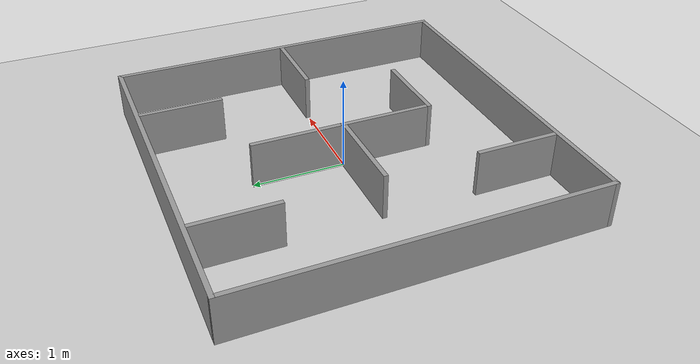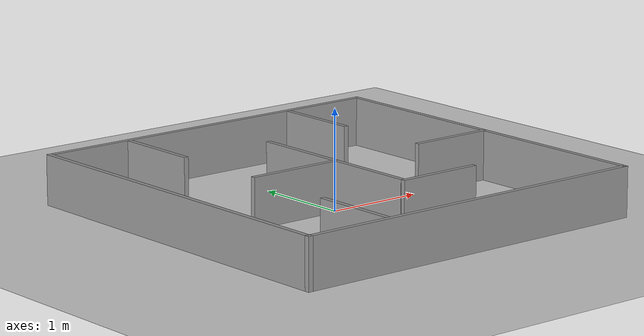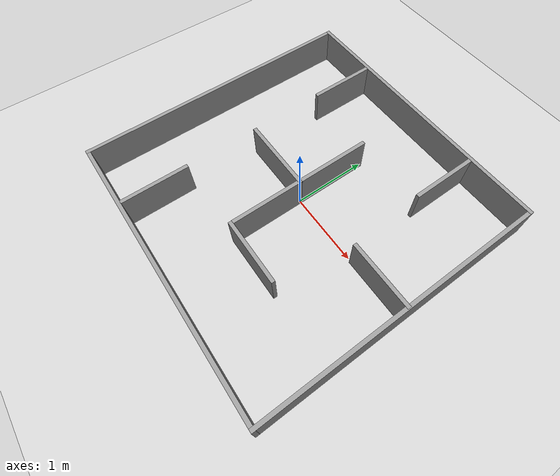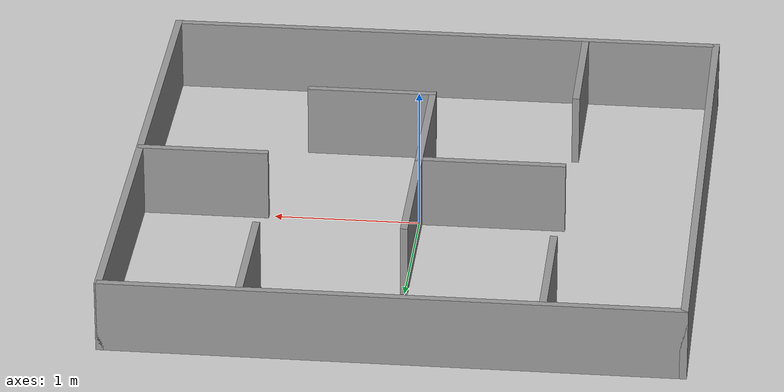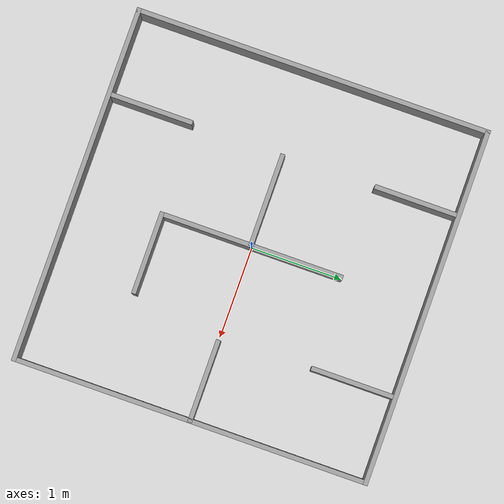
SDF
<sdf version="1.6">
 <world name="default">
  <light name="sun" type="directional">
   <pose>0 0 10 0 -0 0</pose>
   <diffuse>0.8 0.8 0.8 1</diffuse>
   <specular>0.1 0.1 0.1 1</specular>
   <attenuation>
    <range>1000</range>
    <constant>0.9</constant>
    <linear>0.01</linear>
    <quadratic>0.001</quadratic>
   </attenuation>
   <direction>-0.5 0.5 -1</direction>
  </light>
  <model name="ground_plane">
   <static>1</static>
   <link name="link">
    <collision name="collision">
     <geometry><plane><normal>0 0 1</normal><size>100 100</size></plane></geometry>
     <surface><friction><ode><mu>100</mu><mu2>50</mu2></ode></friction></surface>
    </collision>
    <visual name="visual">
     <cast_shadows>0</cast_shadows>
     <geometry><plane><normal>0 0 1</normal><size>100 100</size></plane></geometry>
     <material>
      <script><uri>file://media/materials/scripts/gazebo.material</uri><name>Gazebo/Grey</name></script>
     </material>
    </visual>
   </link>
  </model>
  <gravity>0 0 -9.8</gravity>
  <magnetic_field>6e-06 2.3e-05 -4.2e-05</magnetic_field>
  <atmosphere type="adiabatic"/>
  <physics name="default_physics" default="0" type="ode">
   <max_step_size>0.001</max_step_size>
   <real_time_factor>1</real_time_factor>
   <real_time_update_rate>1000</real_time_update_rate>
  </physics>
  <scene><ambient>0.4 0.4 0.4 1</ambient><background>0.7 0.7 0.7 1</background><shadows>1</shadows></scene>
  <spherical_coordinates>
   <surface_model>EARTH_WGS84</surface_model>
   <latitude_deg>0</latitude_deg>
   <longitude_deg>0</longitude_deg>
   <elevation>0</elevation>
   <heading_deg>0</heading_deg>
  </spherical_coordinates>
  <model name="maze-one_0">
   <link name="Wall_11">
    <pose>0 1.925 0 0 -0 0</pose>
    <visual name="Wall_11_Visual">
     <pose>0 0 0.25 0 -0 0</pose>
     <geometry><box><size>3.9 0.05 0.5</size></box></geometry>
     <material>
      <script><uri>file://media/materials/scripts/gazebo.material</uri><name>Gazebo/Grey</name></script>
      <ambient>1 1 1 1</ambient>
      <diffuse>0.7 0.7 0.7 1</diffuse>
      <specular>0.01 0.01 0.01 1</specular>
      <emissive>0 0 0 1</emissive>
     </material>
    </visual>
    <collision name="Wall_11_Collision">
     <pose>0 0 0.25 0 -0 0</pose>
     <geometry><box><size>3.9 0.05 0.5</size></box></geometry>
     <surface>
      <friction>
       <ode><mu>1</mu><mu2>1</mu2><fdir1>0 0 0</fdir1><slip1>0</slip1><slip2>0</slip2></ode>
       <torsional>
        <coefficient>1</coefficient>
        <patch_radius>0</patch_radius>
        <surface_radius>0</surface_radius>
        <use_patch_radius>1</use_patch_radius>
        <ode><slip>0</slip></ode>
       </torsional>
      </friction>
      <bounce><restitution_coefficient>0</restitution_coefficient><threshold>1e+06</threshold></bounce>
      <contact>
       <collide_without_contact>0</collide_without_contact>
       <collide_without_contact_bitmask>1</collide_without_contact_bitmask>
       <collide_bitmask>1</collide_bitmask>
       <ode>
        <soft_cfm>0</soft_cfm>
        <soft_erp>0.2</soft_erp>
        <kp>1e+13</kp>
        <kd>1</kd>
        <max_vel>0.01</max_vel>
        <min_depth>0</min_depth>
       </ode>
       <bullet>
        <split_impulse>1</split_impulse>
        <split_impulse_penetration_threshold>-0.01</split_impulse_penetration_threshold>
        <soft_cfm>0</soft_cfm>
        <soft_erp>0.2</soft_erp>
        <kp>1e+13</kp>
        <kd>1</kd>
       </bullet>
      </contact>
     </surface>
    </collision>
   </link>
   <link name="Wall_12">
    <pose>1.925 0 0 0 0 -1.5708</pose>
    <visual name="Wall_12_Visual">
     <pose>0 0 0.25 0 -0 0</pose>
     <geometry><box><size>3.9 0.05 0.5</size></box></geometry>
     <material>
      <script><uri>file://media/materials/scripts/gazebo.material</uri><name>Gazebo/Grey</name></script>
      <ambient>1 1 1 1</ambient>
      <diffuse>0.7 0.7 0.7 1</diffuse>
      <specular>0.01 0.01 0.01 1</specular>
      <emissive>0 0 0 1</emissive>
     </material>
    </visual>
    <collision name="Wall_12_Collision">
     <pose>0 0 0.25 0 -0 0</pose>
     <geometry><box><size>3.9 0.05 0.5</size></box></geometry>
     <surface>
      <friction>
       <ode><mu>1</mu><mu2>1</mu2><fdir1>0 0 0</fdir1><slip1>0</slip1><slip2>0</slip2></ode>
       <torsional>
        <coefficient>1</coefficient>
        <patch_radius>0</patch_radius>
        <surface_radius>0</surface_radius>
        <use_patch_radius>1</use_patch_radius>
        <ode><slip>0</slip></ode>
       </torsional>
      </friction>
      <bounce><restitution_coefficient>0</restitution_coefficient><threshold>1e+06</threshold></bounce>
      <contact>
       <collide_without_contact>0</collide_without_contact>
       <collide_without_contact_bitmask>1</collide_without_contact_bitmask>
       <collide_bitmask>1</collide_bitmask>
       <ode>
        <soft_cfm>0</soft_cfm>
        <soft_erp>0.2</soft_erp>
        <kp>1e+13</kp>
        <kd>1</kd>
        <max_vel>0.01</max_vel>
        <min_depth>0</min_depth>
       </ode>
       <bullet>
        <split_impulse>1</split_impulse>
        <split_impulse_penetration_threshold>-0.01</split_impulse_penetration_threshold>
        <soft_cfm>0</soft_cfm>
        <soft_erp>0.2</soft_erp>
        <kp>1e+13</kp>
        <kd>1</kd>
       </bullet>
      </contact>
     </surface>
    </collision>
   </link>
   <link name="Wall_13">
    <pose>0 -1.925 0 0 -0 3.14159</pose>
    <visual name="Wall_13_Visual">
     <pose>0 0 0.25 0 -0 0</pose>
     <geometry><box><size>3.9 0.05 0.5</size></box></geometry>
     <material>
      <script><uri>file://media/materials/scripts/gazebo.material</uri><name>Gazebo/Grey</name></script>
      <ambient>1 1 1 1</ambient>
      <diffuse>0.7 0.7 0.7 1</diffuse>
      <specular>0.01 0.01 0.01 1</specular>
      <emissive>0 0 0 1</emissive>
     </material>
    </visual>
    <collision name="Wall_13_Collision">
     <pose>0 0 0.25 0 -0 0</pose>
     <geometry><box><size>3.9 0.05 0.5</size></box></geometry>
     <surface>
      <friction>
       <ode><mu>1</mu><mu2>1</mu2><fdir1>0 0 0</fdir1><slip1>0</slip1><slip2>0</slip2></ode>
       <torsional>
        <coefficient>1</coefficient>
        <patch_radius>0</patch_radius>
        <surface_radius>0</surface_radius>
        <use_patch_radius>1</use_patch_radius>
        <ode><slip>0</slip></ode>
       </torsional>
      </friction>
      <bounce><restitution_coefficient>0</restitution_coefficient><threshold>1e+06</threshold></bounce>
      <contact>
       <collide_without_contact>0</collide_without_contact>
       <collide_without_contact_bitmask>1</collide_without_contact_bitmask>
       <collide_bitmask>1</collide_bitmask>
       <ode>
        <soft_cfm>0</soft_cfm>
        <soft_erp>0.2</soft_erp>
        <kp>1e+13</kp>
        <kd>1</kd>
        <max_vel>0.01</max_vel>
        <min_depth>0</min_depth>
       </ode>
       <bullet>
        <split_impulse>1</split_impulse>
        <split_impulse_penetration_threshold>-0.01</split_impulse_penetration_threshold>
        <soft_cfm>0</soft_cfm>
        <soft_erp>0.2</soft_erp>
        <kp>1e+13</kp>
        <kd>1</kd>
       </bullet>
      </contact>
     </surface>
    </collision>
   </link>
   <link name="Wall_14">
    <pose>-1.925 0 0 0 -0 1.5708</pose>
    <visual name="Wall_14_Visual">
     <pose>0 0 0.25 0 -0 0</pose>
     <geometry><box><size>3.9 0.05 0.5</size></box></geometry>
     <material>
      <script><uri>file://media/materials/scripts/gazebo.material</uri><name>Gazebo/Grey</name></script>
      <ambient>1 1 1 1</ambient>
      <diffuse>0.7 0.7 0.7 1</diffuse>
      <specular>0.01 0.01 0.01 1</specular>
      <emissive>0 0 0 1</emissive>
     </material>
    </visual>
    <collision name="Wall_14_Collision">
     <pose>0 0 0.25 0 -0 0</pose>
     <geometry><box><size>3.9 0.05 0.5</size></box></geometry>
     <surface>
      <friction>
       <ode><mu>1</mu><mu2>1</mu2><fdir1>0 0 0</fdir1><slip1>0</slip1><slip2>0</slip2></ode>
       <torsional>
        <coefficient>1</coefficient>
        <patch_radius>0</patch_radius>
        <surface_radius>0</surface_radius>
        <use_patch_radius>1</use_patch_radius>
        <ode><slip>0</slip></ode>
       </torsional>
      </friction>
      <bounce><restitution_coefficient>0</restitution_coefficient><threshold>1e+06</threshold></bounce>
      <contact>
       <collide_without_contact>0</collide_without_contact>
       <collide_without_contact_bitmask>1</collide_without_contact_bitmask>
       <collide_bitmask>1</collide_bitmask>
       <ode>
        <soft_cfm>0</soft_cfm>
        <soft_erp>0.2</soft_erp>
        <kp>1e+13</kp>
        <kd>1</kd>
        <max_vel>0.01</max_vel>
        <min_depth>0</min_depth>
       </ode>
       <bullet>
        <split_impulse>1</split_impulse>
        <split_impulse_penetration_threshold>-0.01</split_impulse_penetration_threshold>
        <soft_cfm>0</soft_cfm>
        <soft_erp>0.2</soft_erp>
        <kp>1e+13</kp>
        <kd>1</kd>
       </bullet>
      </contact>
     </surface>
    </collision>
   </link>
   <link name="Wall_27">
    <pose>0.996 1.4547 0 0 0 -1.5708</pose>
    <visual name="Wall_27_Visual">
     <pose>0 0 0.25 0 -0 0</pose>
     <geometry><box><size>0.900337 0.05 0.5</size></box></geometry>
     <material>
      <script><uri>file://media/materials/scripts/gazebo.material</uri><name>Gazebo/Grey</name></script>
      <ambient>1 1 1 1</ambient>
      <diffuse>0.7 0.7 0.7 1</diffuse>
      <specular>0.01 0.01 0.01 1</specular>
      <emissive>0 0 0 1</emissive>
     </material>
    </visual>
    <collision name="Wall_27_Collision">
     <pose>0 0 0.25 0 -0 0</pose>
     <geometry><box><size>0.900337 0.05 0.5</size></box></geometry>
     <surface>
      <friction>
       <ode><mu>1</mu><mu2>1</mu2><fdir1>0 0 0</fdir1><slip1>0</slip1><slip2>0</slip2></ode>
       <torsional>
        <coefficient>1</coefficient>
        <patch_radius>0</patch_radius>
        <surface_radius>0</surface_radius>
        <use_patch_radius>1</use_patch_radius>
        <ode><slip>0</slip></ode>
       </torsional>
      </friction>
      <bounce><restitution_coefficient>0</restitution_coefficient><threshold>1e+06</threshold></bounce>
      <contact>
       <collide_without_contact>0</collide_without_contact>
       <collide_without_contact_bitmask>1</collide_without_contact_bitmask>
       <collide_bitmask>1</collide_bitmask>
       <ode>
        <soft_cfm>0</soft_cfm>
        <soft_erp>0.2</soft_erp>
        <kp>1e+13</kp>
        <kd>1</kd>
        <max_vel>0.01</max_vel>
        <min_depth>0</min_depth>
       </ode>
       <bullet>
        <split_impulse>1</split_impulse>
        <split_impulse_penetration_threshold>-0.01</split_impulse_penetration_threshold>
        <soft_cfm>0</soft_cfm>
        <soft_erp>0.2</soft_erp>
        <kp>1e+13</kp>
        <kd>1</kd>
       </bullet>
      </contact>
     </surface>
    </collision>
   </link>
   <link name="Wall_30">
    <pose>-1.0002 1.4523 0 0 0 -1.5708</pose>
    <visual name="Wall_30_Visual">
     <pose>0 0 0.25 0 -0 0</pose>
     <geometry><box><size>0.900217 0.05 0.5</size></box></geometry>
     <material>
      <script><uri>file://media/materials/scripts/gazebo.material</uri><name>Gazebo/Grey</name></script>
      <ambient>1 1 1 1</ambient>
      <diffuse>0.7 0.7 0.7 1</diffuse>
      <specular>0.01 0.01 0.01 1</specular>
      <emissive>0 0 0 1</emissive>
     </material>
    </visual>
    <collision name="Wall_30_Collision">
     <pose>0 0 0.25 0 -0 0</pose>
     <geometry><box><size>0.900217 0.05 0.5</size></box></geometry>
     <surface>
      <friction>
       <ode><mu>1</mu><mu2>1</mu2><fdir1>0 0 0</fdir1><slip1>0</slip1><slip2>0</slip2></ode>
       <torsional>
        <coefficient>1</coefficient>
        <patch_radius>0</patch_radius>
        <surface_radius>0</surface_radius>
        <use_patch_radius>1</use_patch_radius>
        <ode><slip>0</slip></ode>
       </torsional>
      </friction>
      <bounce><restitution_coefficient>0</restitution_coefficient><threshold>1e+06</threshold></bounce>
      <contact>
       <collide_without_contact>0</collide_without_contact>
       <collide_without_contact_bitmask>1</collide_without_contact_bitmask>
       <collide_bitmask>1</collide_bitmask>
       <ode>
        <soft_cfm>0</soft_cfm>
        <soft_erp>0.2</soft_erp>
        <kp>1e+13</kp>
        <kd>1</kd>
        <max_vel>0.01</max_vel>
        <min_depth>0</min_depth>
       </ode>
       <bullet>
        <split_impulse>1</split_impulse>
        <split_impulse_penetration_threshold>-0.01</split_impulse_penetration_threshold>
        <soft_cfm>0</soft_cfm>
        <soft_erp>0.2</soft_erp>
        <kp>1e+13</kp>
        <kd>1</kd>
       </bullet>
      </contact>
     </surface>
    </collision>
   </link>
   <link name="Wall_36">
    <pose>1.48944 0.002482 0 0 -0 3.14159</pose>
    <visual name="Wall_36_Visual">
     <pose>0 0 0.25 0 -0 0</pose>
     <geometry><box><size>0.9 0.05 0.5</size></box></geometry>
     <material>
      <script><uri>file://media/materials/scripts/gazebo.material</uri><name>Gazebo/Grey</name></script>
      <ambient>1 1 1 1</ambient>
      <diffuse>0.7 0.7 0.7 1</diffuse>
      <specular>0.01 0.01 0.01 1</specular>
      <emissive>0 0 0 1</emissive>
     </material>
    </visual>
    <collision name="Wall_36_Collision">
     <pose>0 0 0.25 0 -0 0</pose>
     <geometry><box><size>0.9 0.05 0.5</size></box></geometry>
     <surface>
      <friction>
       <ode><mu>1</mu><mu2>1</mu2><fdir1>0 0 0</fdir1><slip1>0</slip1><slip2>0</slip2></ode>
       <torsional>
        <coefficient>1</coefficient>
        <patch_radius>0</patch_radius>
        <surface_radius>0</surface_radius>
        <use_patch_radius>1</use_patch_radius>
        <ode><slip>0</slip></ode>
       </torsional>
      </friction>
      <bounce><restitution_coefficient>0</restitution_coefficient><threshold>1e+06</threshold></bounce>
      <contact>
       <collide_without_contact>0</collide_without_contact>
       <collide_without_contact_bitmask>1</collide_without_contact_bitmask>
       <collide_bitmask>1</collide_bitmask>
       <ode>
        <soft_cfm>0</soft_cfm>
        <soft_erp>0.2</soft_erp>
        <kp>1e+13</kp>
        <kd>1</kd>
        <max_vel>0.01</max_vel>
        <min_depth>0</min_depth>
       </ode>
       <bullet>
        <split_impulse>1</split_impulse>
        <split_impulse_penetration_threshold>-0.01</split_impulse_penetration_threshold>
        <soft_cfm>0</soft_cfm>
        <soft_erp>0.2</soft_erp>
        <kp>1e+13</kp>
        <kd>1</kd>
       </bullet>
      </contact>
     </surface>
    </collision>
   </link>
   <link name="Wall_40">
    <pose>-0.997417 -1.45292 0 0 0 -1.5708</pose>
    <visual name="Wall_40_Visual">
     <pose>0 0 0.25 0 -0 0</pose>
     <geometry><box><size>0.899931 0.05 0.5</size></box></geometry>
     <material>
      <script><uri>file://media/materials/scripts/gazebo.material</uri><name>Gazebo/Grey</name></script>
      <ambient>1 1 1 1</ambient>
      <diffuse>0.7 0.7 0.7 1</diffuse>
      <specular>0.01 0.01 0.01 1</specular>
      <emissive>0 0 0 1</emissive>
     </material>
    </visual>
    <collision name="Wall_40_Collision">
     <pose>0 0 0.25 0 -0 0</pose>
     <geometry><box><size>0.899931 0.05 0.5</size></box></geometry>
     <surface>
      <friction>
       <ode><mu>1</mu><mu2>1</mu2><fdir1>0 0 0</fdir1><slip1>0</slip1><slip2>0</slip2></ode>
       <torsional>
        <coefficient>1</coefficient>
        <patch_radius>0</patch_radius>
        <surface_radius>0</surface_radius>
        <use_patch_radius>1</use_patch_radius>
        <ode><slip>0</slip></ode>
       </torsional>
      </friction>
      <bounce><restitution_coefficient>0</restitution_coefficient><threshold>1e+06</threshold></bounce>
      <contact>
       <collide_without_contact>0</collide_without_contact>
       <collide_without_contact_bitmask>1</collide_without_contact_bitmask>
       <collide_bitmask>1</collide_bitmask>
       <ode>
        <soft_cfm>0</soft_cfm>
        <soft_erp>0.2</soft_erp>
        <kp>1e+13</kp>
        <kd>1</kd>
        <max_vel>0.01</max_vel>
        <min_depth>0</min_depth>
       </ode>
       <bullet>
        <split_impulse>1</split_impulse>
        <split_impulse_penetration_threshold>-0.01</split_impulse_penetration_threshold>
        <soft_cfm>0</soft_cfm>
        <soft_erp>0.2</soft_erp>
        <kp>1e+13</kp>
        <kd>1</kd>
       </bullet>
      </contact>
     </surface>
    </collision>
   </link>
   <link name="Wall_43">
    <pose>-0.496076 -0.00777 0 0 -0 3.14159</pose>
    <inertial>
     <inertia><ixx>nan</ixx><ixy>0</ixy><ixz>0</ixz><iyy>nan</iyy><iyz>0</iyz><izz>nan</izz></inertia>
     <mass>0</mass>
    </inertial>
    <visual name="Wall_43_Visual">
     <pose>0 0 0.25 0 -0 0</pose>
     <geometry><box><size>1.0129 0.05 0.5</size></box></geometry>
     <material>
      <script><uri>file://media/materials/scripts/gazebo.material</uri><name>Gazebo/Grey</name></script>
      <ambient>1 1 1 1</ambient>
      <diffuse>0.7 0.7 0.7 1</diffuse>
      <specular>0.01 0.01 0.01 1</specular>
      <emissive>0 0 0 1</emissive>
     </material>
    </visual>
    <collision name="Wall_43_Collision">
     <pose>0 0 0.25 0 -0 0</pose>
     <geometry><box><size>1.0129 0.05 0.5</size></box></geometry>
     <surface>
      <friction>
       <ode><mu>1</mu><mu2>1</mu2><fdir1>0 0 0</fdir1><slip1>0</slip1><slip2>0</slip2></ode>
       <torsional>
        <coefficient>1</coefficient>
        <patch_radius>0</patch_radius>
        <surface_radius>0</surface_radius>
        <use_patch_radius>1</use_patch_radius>
        <ode><slip>0</slip></ode>
       </torsional>
      </friction>
      <bounce><restitution_coefficient>0</restitution_coefficient><threshold>1e+06</threshold></bounce>
      <contact>
       <collide_without_contact>0</collide_without_contact>
       <collide_without_contact_bitmask>1</collide_without_contact_bitmask>
       <collide_bitmask>1</collide_bitmask>
       <ode>
        <soft_cfm>0</soft_cfm>
        <soft_erp>0.2</soft_erp>
        <kp>1e+13</kp>
        <kd>1</kd>
        <max_vel>0.01</max_vel>
        <min_depth>0</min_depth>
       </ode>
       <bullet>
        <split_impulse>1</split_impulse>
        <split_impulse_penetration_threshold>-0.01</split_impulse_penetration_threshold>
        <soft_cfm>0</soft_cfm>
        <soft_erp>0.2</soft_erp>
        <kp>1e+13</kp>
        <kd>1</kd>
       </bullet>
      </contact>
     </surface>
    </collision>
   </link>
   <link name="Wall_45">
    <pose>0.004129 0.508535 0 0 -0 1.5708</pose>
    <inertial>
     <mass>1.05671</mass>
     <inertia><ixx>1.05671</ixx><ixy>0</ixy><ixz>0</ixz><iyy>1.11833</iyy><iyz>0</iyz><izz>1.11833</izz></inertia>
    </inertial>
    <visual name="Wall_45_Visual">
     <pose>0 0 0.25 0 -0 0</pose>
     <geometry><box><size>0.990985 0.05 0.5</size></box></geometry>
     <material>
      <script><uri>file://media/materials/scripts/gazebo.material</uri><name>Gazebo/Grey</name></script>
      <ambient>1 1 1 1</ambient>
      <diffuse>0.7 0.7 0.7 1</diffuse>
      <specular>0.01 0.01 0.01 1</specular>
      <emissive>0 0 0 1</emissive>
      <shader type="vertex"><normal_map>__default__</normal_map></shader>
     </material>
    </visual>
    <collision name="Wall_45_Collision">
     <pose>0 0 0.25 0 -0 0</pose>
     <geometry><box><size>0.990985 0.05 0.5</size></box></geometry>
     <surface>
      <friction>
       <ode><mu>1</mu><mu2>1</mu2><fdir1>0 0 0</fdir1><slip1>0</slip1><slip2>0</slip2></ode>
       <torsional>
        <coefficient>1</coefficient>
        <patch_radius>0</patch_radius>
        <surface_radius>0</surface_radius>
        <use_patch_radius>1</use_patch_radius>
        <ode><slip>0</slip></ode>
       </torsional>
      </friction>
      <bounce><restitution_coefficient>0</restitution_coefficient><threshold>1e+06</threshold></bounce>
      <contact>
       <collide_without_contact>0</collide_without_contact>
       <collide_without_contact_bitmask>1</collide_without_contact_bitmask>
       <collide_bitmask>1</collide_bitmask>
       <ode>
        <soft_cfm>0</soft_cfm>
        <soft_erp>0.2</soft_erp>
        <kp>1e+13</kp>
        <kd>1</kd>
        <max_vel>0.01</max_vel>
        <min_depth>0</min_depth>
       </ode>
       <bullet>
        <split_impulse>1</split_impulse>
        <split_impulse_penetration_threshold>-0.01</split_impulse_penetration_threshold>
        <soft_cfm>0</soft_cfm>
        <soft_erp>0.2</soft_erp>
        <kp>1e+13</kp>
        <kd>1</kd>
       </bullet>
      </contact>
     </surface>
    </collision>
   </link>
   <link name="Wall_47">
    <pose>0.003706 -0.469247 0 0 0 -1.5708</pose>
    <inertial>
     <inertia><ixx>nan</ixx><ixy>0</ixy><ixz>0</ixz><iyy>nan</iyy><iyz>0</iyz><izz>nan</izz></inertia>
     <mass>0</mass>
    </inertial>
    <visual name="Wall_47_Visual">
     <pose>0 0 0.25 0 -0 0</pose>
     <geometry><box><size>0.992125 0.05 0.5</size></box></geometry>
     <material>
      <script><uri>file://media/materials/scripts/gazebo.material</uri><name>Gazebo/Grey</name></script>
      <ambient>1 1 1 1</ambient>
      <diffuse>0.7 0.7 0.7 1</diffuse>
      <specular>0.01 0.01 0.01 1</specular>
      <emissive>0 0 0 1</emissive>
     </material>
    </visual>
    <collision name="Wall_47_Collision">
     <pose>0 0 0.25 0 -0 0</pose>
     <geometry><box><size>0.992125 0.05 0.5</size></box></geometry>
     <surface>
      <friction>
       <ode><mu>1</mu><mu2>1</mu2><fdir1>0 0 0</fdir1><slip1>0</slip1><slip2>0</slip2></ode>
       <torsional>
        <coefficient>1</coefficient>
        <patch_radius>0</patch_radius>
        <surface_radius>0</surface_radius>
        <use_patch_radius>1</use_patch_radius>
        <ode><slip>0</slip></ode>
       </torsional>
      </friction>
      <bounce><restitution_coefficient>0</restitution_coefficient><threshold>1e+06</threshold></bounce>
      <contact>
       <collide_without_contact>0</collide_without_contact>
       <collide_without_contact_bitmask>1</collide_without_contact_bitmask>
       <collide_bitmask>1</collide_bitmask>
       <ode>
        <soft_cfm>0</soft_cfm>
        <soft_erp>0.2</soft_erp>
        <kp>1e+13</kp>
        <kd>1</kd>
        <max_vel>0.01</max_vel>
        <min_depth>0</min_depth>
       </ode>
       <bullet>
        <split_impulse>1</split_impulse>
        <split_impulse_penetration_threshold>-0.01</split_impulse_penetration_threshold>
        <soft_cfm>0</soft_cfm>
        <soft_erp>0.2</soft_erp>
        <kp>1e+13</kp>
        <kd>1</kd>
       </bullet>
      </contact>
     </surface>
    </collision>
   </link>
   <link name="Wall_49">
    <pose>0.431063 -0.987023 0 0 -0 0</pose>
    <visual name="Wall_49_Visual">
     <pose>0 0 0.25 0 -0 0</pose>
     <geometry><box><size>0.900077 0.05 0.5</size></box></geometry>
     <material>
      <script><uri>file://media/materials/scripts/gazebo.material</uri><name>Gazebo/Grey</name></script>
      <ambient>1 1 1 1</ambient>
      <diffuse>0.7 0.7 0.7 1</diffuse>
      <specular>0.01 0.01 0.01 1</specular>
      <emissive>0 0 0 1</emissive>
     </material>
    </visual>
    <collision name="Wall_49_Collision">
     <pose>0 0 0.25 0 -0 0</pose>
     <geometry><box><size>0.900077 0.05 0.5</size></box></geometry>
     <surface>
      <friction>
       <ode><mu>1</mu><mu2>1</mu2><fdir1>0 0 0</fdir1><slip1>0</slip1><slip2>0</slip2></ode>
       <torsional>
        <coefficient>1</coefficient>
        <patch_radius>0</patch_radius>
        <surface_radius>0</surface_radius>
        <use_patch_radius>1</use_patch_radius>
        <ode><slip>0</slip></ode>
       </torsional>
      </friction>
      <bounce><restitution_coefficient>0</restitution_coefficient><threshold>1e+06</threshold></bounce>
      <contact>
       <collide_without_contact>0</collide_without_contact>
       <collide_without_contact_bitmask>1</collide_without_contact_bitmask>
       <collide_bitmask>1</collide_bitmask>
       <ode>
        <soft_cfm>0</soft_cfm>
        <soft_erp>0.2</soft_erp>
        <kp>1e+13</kp>
        <kd>1</kd>
        <max_vel>0.01</max_vel>
        <min_depth>0</min_depth>
       </ode>
       <bullet>
        <split_impulse>1</split_impulse>
        <split_impulse_penetration_threshold>-0.01</split_impulse_penetration_threshold>
        <soft_cfm>0</soft_cfm>
        <soft_erp>0.2</soft_erp>
        <kp>1e+13</kp>
        <kd>1</kd>
       </bullet>
      </contact>
     </surface>
    </collision>
   </link>
   <static>1</static>
  </model>
 </world>
</sdf>
